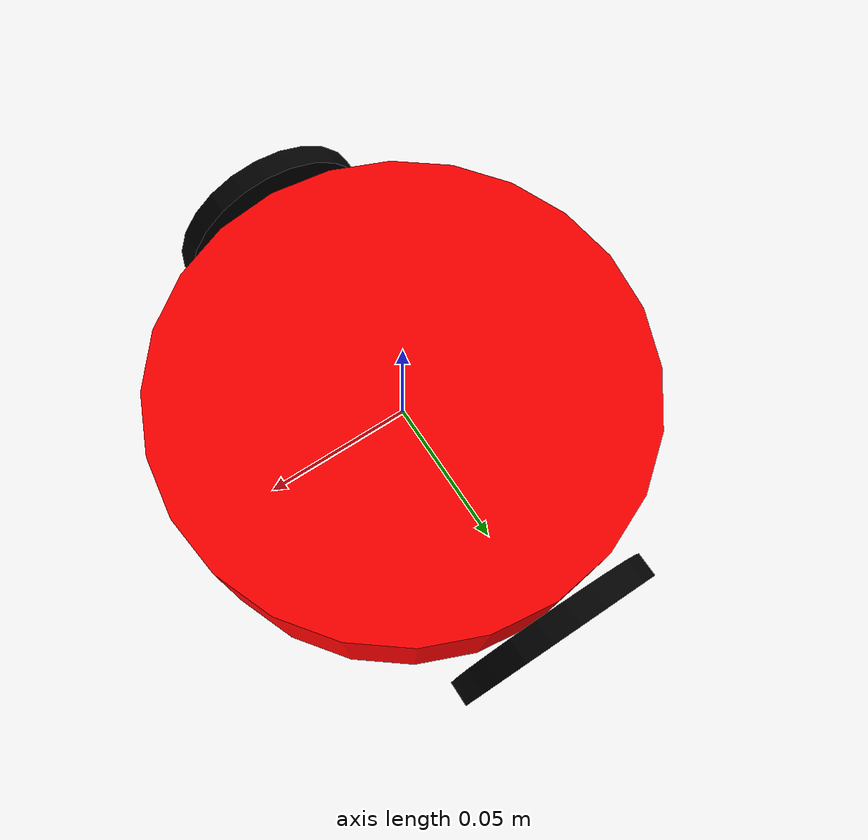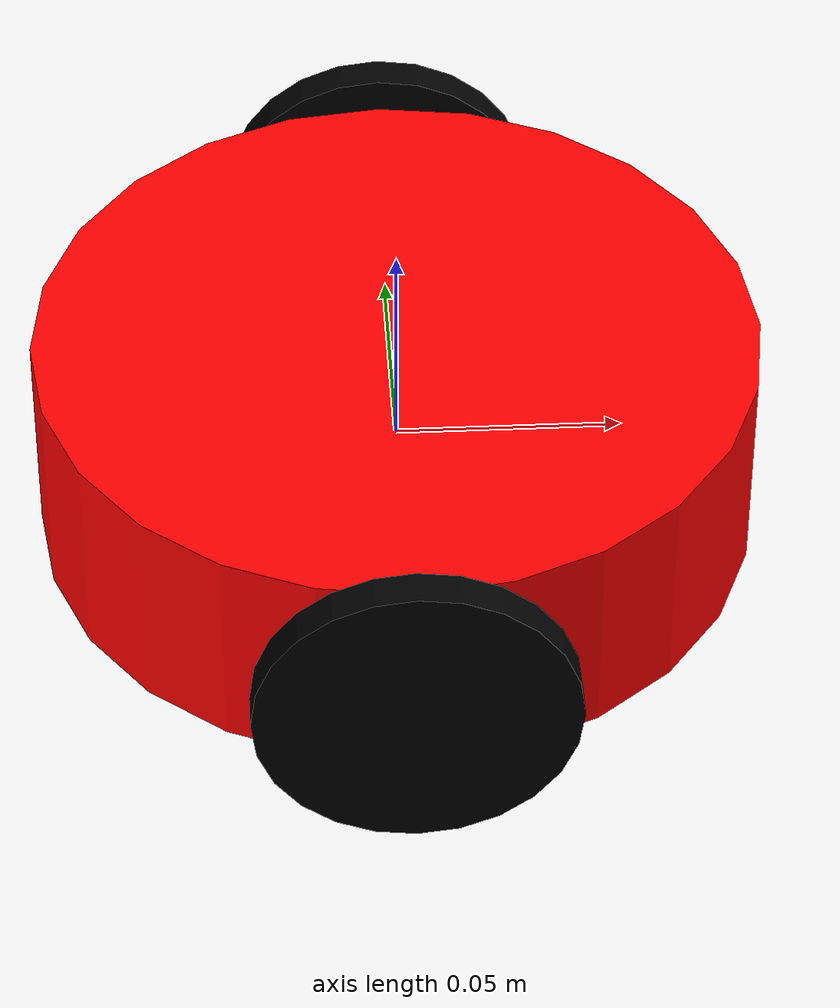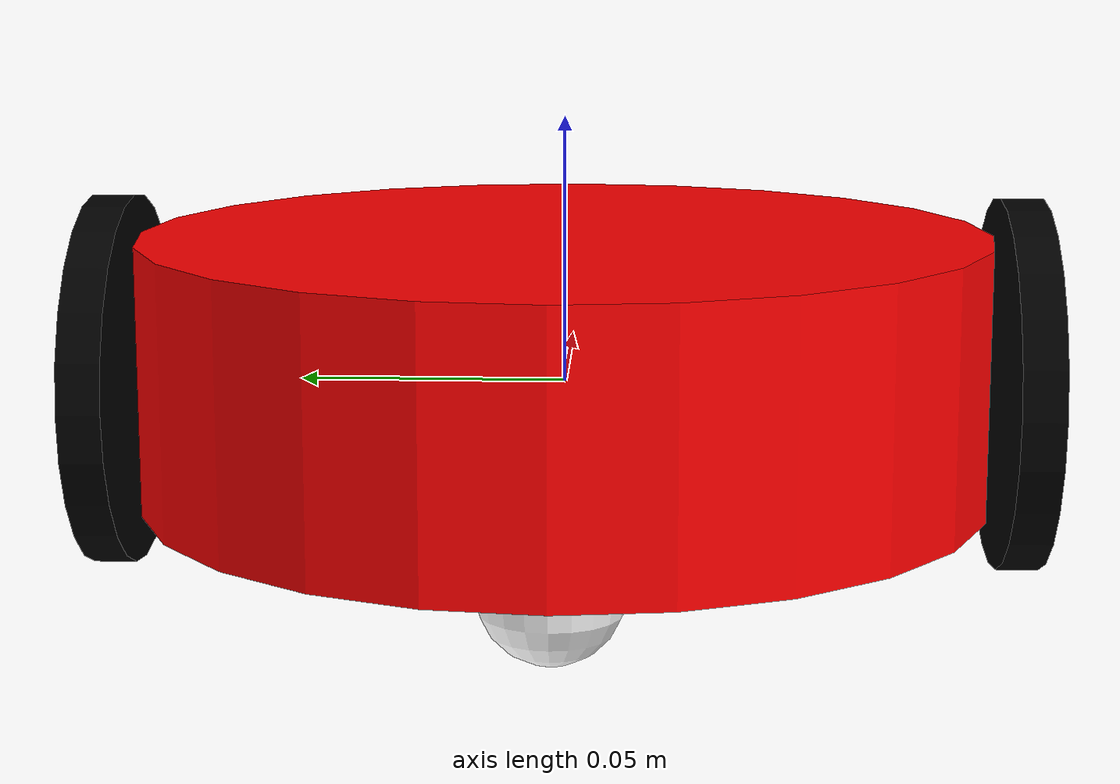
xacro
<?xml version="1.0"?>
<robot xmlns:xacro="http://www.ros.org/wiki/xacro"  name="robot">

    <xacro:arg name="prefix" default="" />

    <xacro:arg name="use_ros2_control" default="true"/>

    <xacro:include filename="$(find robot_hardware)/urdf/robot_core.xacro" />

    <xacro:if value="$(arg use_ros2_control)"/>
        <xacro:include filename="$(find robot_hardware)/ros2_control/ros2_control.xacro"/>
    <xacro:unless value="$(arg use_ros2_control)">
        <xacro:include filename="$(find robot_hardware)/ros2_control/gazebo_control.xacro"/>
    </xacro:unless>

    <xacro:robot prefix="$(arg prefix)" />

    <xacro:ti_rslk_ros2_control
    name="Robot" prefix="$(arg prefix)" />

</robot>

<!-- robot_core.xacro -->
<robot xmlns:xacro="http://www.ros.org/wiki/xacro">

    <xacro:include filename="inertial_macros.xacro"/>
    <xacro:macro name="robot" params="prefix">

        <material name="white">
            <color rgba="1 1 1 1"/>
        </material>

        <material name="red">
            <color rgba="1 0 0 1"/>
        </material>

        <material name="black">
            <color rgba="0 0 0 1"/>
        </material>

        <!-- BASE LINK -->

        <link name="base_link">

        </link>

        <!-- CHASSIS LINK -->

        <joint name="chassis_joint" type="fixed">
            <parent link="base_link"/>
            <child link="chassis"/>
            <origin xyz="-0.07 0 0"/>
        </joint>

        <link name="chassis">
            <visual>
                <origin xyz="0.07 0 0.003"/>
                <geometry>
                    <cylinder radius="0.08" length="0.05"/>
                </geometry>
                <material name="red"/>
            </visual>
            <collision>
                <origin xyz="0.07 0 0.003"/>
                <geometry>
                    <cylinder radius="0.08" length="0.05"/>
                </geometry>
                <material name="red"/>
            </collision>
            <xacro:inertial_cylinder mass="0.243" length="0.05" radius="0.08">
                <origin xyz="0.07 0 0.003" rpy="0 0 0"/>
            </xacro:inertial_cylinder>
        </link>

        <gazebo reference="chassis">
            <material>
                Gazebo/Red
            </material>
        </gazebo>

        <!-- LEFT WHEEL LINK -->

        <joint name="left_wheel_joint" type="continuous">
            <parent link="base_link"/>
            <child link="left_wheel"/>
            <origin xyz="0 0.085 0" rpy="-${pi/2} 0 0" />
            <axis xyz="0 0 1"/>
        </joint>

        <link name="left_wheel">
            <visual>
                <geometry>
                    <cylinder radius="0.035" length="0.008"/>
                </geometry>
                <material name="black"/>
            </visual>
            <collision>
                <geometry>
                    <cylinder radius="0.035" length="0.008"/>
                </geometry>
                <material name="black"/>
            </collision>
            <xacro:inertial_cylinder mass="0.007" length="0.008" radius="0.035">
                <origin xyz="0 0 0" rpy="0 0 0"/>
            </xacro:inertial_cylinder>
        </link>

        <gazebo reference="left_wheel">
            <material>
                Gazebo/Black
            </material>
        </gazebo>

        <!-- RIGHT WHEEL LINK -->

        <joint name="right_wheel_joint" type="continuous">
            <parent link="base_link"/>
            <child link="right_wheel"/>
            <origin xyz="0 -0.085 0" rpy="${pi/2} 0 0"/>
            <axis xyz="0 0 -1"/>
        </joint>

        <link name="right_wheel">
            <visual>
                <geometry>
                    <cylinder radius="0.035" length="0.008"/>
                </geometry>
                <material name="black"/>
            </visual>
            <collision>
                <geometry>
                    <cylinder radius="0.035" length="0.008"/>
                </geometry>
                <material name="black"/>
            </collision>
            <xacro:inertial_cylinder mass="0.007" length="0.008" radius="0.035">
                <origin xyz="0 0 0" rpy="0 0 0"/>
            </xacro:inertial_cylinder>
        </link>

        <gazebo reference="right_wheel">
            <material>
                Gazebo/Black
            </material>
        </gazebo>

        <!-- CASTER WHEEL LINK -->

        <joint name="caster_wheel_joint" type="fixed">
            <parent link="chassis"/>
            <child link="caster_wheel"/>
            <origin xyz="0.005 0 -0.022"/>
        </joint>

        <link name="caster_wheel">
            <visual>
                <geometry>
                    <sphere radius="0.0127"/>
                </geometry>
                <material name="white"/>
            </visual>
            <collision>
                <geometry>
                    <sphere radius="0.0127"/>
                </geometry>
                <material name="white"/>
            </collision>
            <xacro:inertial_sphere mass="0.0165" radius="0.0127">
                <origin xyz="0 0 0" rpy="0 0 0"/>
            </xacro:inertial_sphere>
        </link>

        <gazebo reference="caster_wheel">
            <material>
                Gazebo/White
            </material>
            <mu1 value="0.001"/>
            <mu2 value="0.001"/>
        </gazebo>
    </xacro:macro>
</robot>
